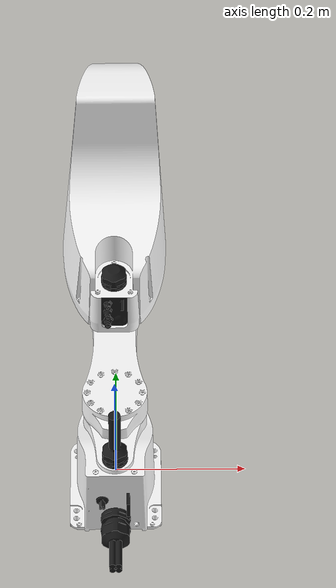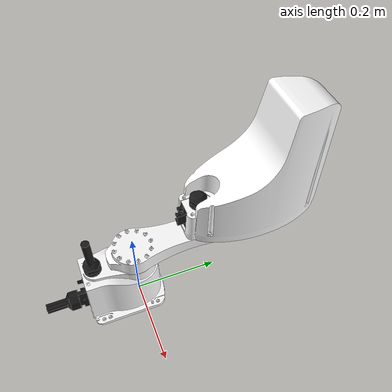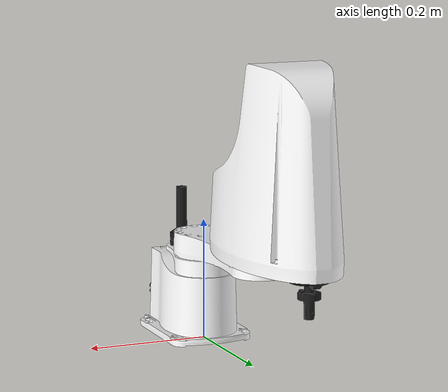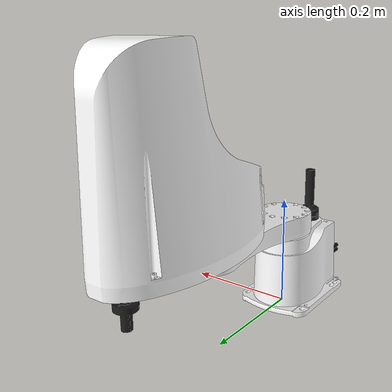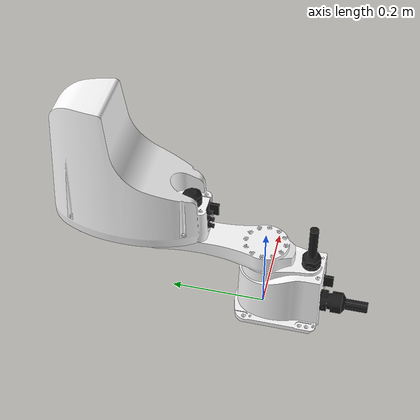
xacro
<?xml version="1.0"?>
<robot xmlns:xacro="http://www.ros.org/wiki/xacro" name="yk400xe">

    <material name="white">
        <color rgba="1.0 1.0 1.0 1"/>
    </material>
    <material name="black">
        <color rgba="0.1 0.1 0.1 1"/>
    </material>

    <xacro:include filename="$(find yk400xe_description)/urdf/links.xacro" />
    <xacro:include filename="$(find yk400xe_description)/urdf/joints.xacro" />

    <link name="std_coords_link"/>
    <joint name="std_coords_joint" type="fixed">
        <parent link="L1"/>
        <child link="std_coords_link"/>
        <origin xyz="0.0 0.0 0.125" rpy="0 0 0"/>
    </joint>

</robot>

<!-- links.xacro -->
<robot xmlns:xacro="http://ros.org/wiki/xacro">

    <link name="base_link">
        <origin xyz="0 0 0" rpy="0 0 0"/>
    </link>

    <link name="L1">
        <inertial>
            <origin xyz="0 0 0" rpy="0 0 0"/>
            <mass value="1"/>  <!--TODO-->
            <inertia ixx="0.001" ixy="0.0" ixz="0.0" iyy="0.001" iyz="0.0" izz="0.001"/><!--TODO-->
        </inertial>
        <visual>
            <material name="white" />
            <origin xyz="0 0 0" rpy="0 0 0" />
            <geometry>
                <mesh filename="package://yk400xe_description/meshes/L1_w.stl" scale="1 1 1"/>
            </geometry>
        </visual>

        <!-- Change to mesh to a simpler -->
        <collision>
            <origin xyz="0.0 0.0 0.0" rpy="0 0 0" />
            <geometry>
                <mesh filename="package://yk400xe_description/meshes/L1_w.stl" scale="1 1 1"/>
            </geometry>
        </collision>
    </link>

    <link name="L1_black">
        <visual>
            <origin xyz="0 0 0" rpy="0 0 0" />
            <geometry>
                <mesh filename="package://yk400xe_description/meshes/L1_b.stl" scale="1 1 1"/>
            </geometry>
            <material name="black" />
        </visual>
    </link>

    <link name="L2">
        <inertial>
            <origin xyz="0 0 0" rpy="0 0 0"/>
            <mass value="1"/>  <!--TODO-->
            <inertia ixx="0.001" ixy="0.0" ixz="0.0" iyy="0.001" iyz="0.0" izz="0.001"/><!--TODO-->
        </inertial>
        <visual>
            <origin xyz="0 0 0" rpy="0 0 0" />
            <geometry>
                <mesh filename="package://yk400xe_description/meshes/L2.stl" scale="1 1 1"/>
            </geometry>
            <material name="white" />
        </visual>

        <!-- Change to mesh to a simpler -->
        <collision>
            <origin xyz="0.0 0.0 0.0" rpy="0 0 0" />
            <geometry>
                <mesh filename="package://yk400xe_description/meshes/L2.stl" scale="1 1 1"/>
            </geometry>
        </collision>
    </link>

    <link name="L3">
        <inertial>
            <origin xyz="0 0 0" rpy="0 0 0"/>
            <mass value="1"/>  <!--TODO-->
            <inertia ixx="0.001" ixy="0.0" ixz="0.0" iyy="0.001" iyz="0.0" izz="0.001"/><!--TODO-->
        </inertial>
        <visual>
            <origin xyz="0 0.175 0" rpy="0 0 0" />
            <geometry>
                <mesh filename="package://yk400xe_description/meshes/L3_w.stl" scale="1 1 1"/>
            </geometry>
            <material name="white" />
        </visual>

        <!-- Change to mesh to a simpler -->
        <collision>
            <origin xyz="0 0.175 0" rpy="0 0 0" />
            <geometry>
                <mesh filename="package://yk400xe_description/meshes/L3_w.stl" scale="1 1 1"/>
            </geometry>
        </collision>
    </link>

    <link name="L3_black">
        <visual>
            <origin xyz="0 0.175 0" rpy="0 0 0" />
            <geometry>
                <mesh filename="package://yk400xe_description/meshes/L3_b.stl" scale="1 1 1"/>
            </geometry>
            <material name="black" />
        </visual>
    </link>

    <link name="L4_dummy">
        <inertial>
            <origin xyz="0 0 0" rpy="0 0 0"/>
            <mass value="1"/>  <!--TODO-->
            <inertia ixx="0.001" ixy="0.0" ixz="0.0" iyy="0.001" iyz="0.0" izz="0.001"/><!--TODO-->
        </inertial>
    </link>

    <link name="L4">
        <inertial>
            <origin xyz="0 0 0" rpy="0 0 0"/>
            <mass value="1"/>  <!--TODO-->
            <inertia ixx="0.001" ixy="0.0" ixz="0.0" iyy="0.001" iyz="0.0" izz="0.001"/><!--TODO-->
        </inertial>
        <visual>
            <origin xyz="0 0 0" rpy="0 0 0" />
            <geometry>
                <mesh filename="package://yk400xe_description/meshes/L4.stl" scale="1 1 1"/>
            </geometry>
            <material name="black" />
        </visual>

        <!-- Change to mesh to a simpler -->
        <collision>
            <origin xyz="0.0 0.0 0.0" rpy="0 0 0" />
            <geometry>
                <mesh filename="package://yk400xe_description/meshes/L4.stl" scale="1 1 1"/>
            </geometry>
        </collision>
    </link>

</robot>

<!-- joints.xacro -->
<robot xmlns:xacro="http://ros.org/wiki/xacro">

    <joint name="J0" type="fixed">
        <parent link="base_link"/>
        <child  link="L1"/>
        <origin xyz="0 0 0" rpy="0 0 0"/>
    </joint>

    <joint name="J1" type="revolute">
        <parent link="L1"/>
        <child  link="L2"/>
        <origin xyz="0 0 0.140" rpy="0 0 0"/>
        <axis xyz="0 0 1"/>
        <limit effort="1000.0" lower="-${radians(132)}" upper="${radians(132)}" velocity="0.5"/>  <!-- +/- 132 deg -->
    </joint>

    <joint name="J2" type="revolute">
        <parent link="L2"/>
        <child  link="L3"/>
        <origin xyz="0 0.225 0.0478" rpy="0 0 0"/>
        <axis xyz="0 0 1"/>
        <limit effort="1000.0" lower="-${radians(150)}" upper="${radians(150)}" velocity="0.5"/>  <!-- +/- 150 deg -->
    </joint>

    <joint name="J3" type="prismatic">
        <parent link="L3"/>
        <child  link="L4_dummy"/>
        <origin xyz="0 0.175 -0.063402" rpy="0 0 0"/>
        <axis xyz="0 0 -1"/>
        <limit effort="1000.0" lower="-0.00875" upper="0.150" velocity="0.5"/>    <!-- -0.00875 - 150 mm in -z  -->
    </joint>

    <joint name="J4" type="revolute">
        <parent link="L4_dummy"/>
        <child  link="L4"/>
        <origin xyz="0 0 0" rpy="0 0 0"/>
        <axis xyz="0 0 1"/>
        <limit effort="1000.0" lower="-${radians(360)}" upper="${radians(360)}" velocity="0.5"/>  <!-- +/- 360 deg -->
    </joint>

    <!-- Cosmetic joints -->
    <joint name="L1_black_joint" type="fixed">
        <parent link="L1"/>
        <child  link="L1_black"/>
        <origin xyz="0 0 0" rpy="0 0 0"/>
    </joint>

    <joint name="L3_black_joint" type="fixed">
        <parent link="L3"/>
        <child  link="L3_black"/>
        <origin xyz="0 0 0" rpy="0 0 0"/>
    </joint>

</robot>
